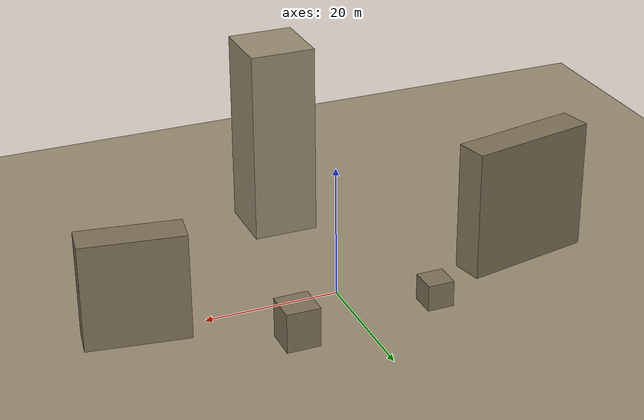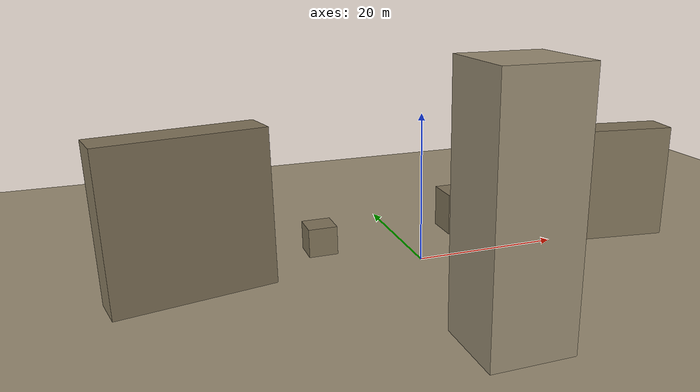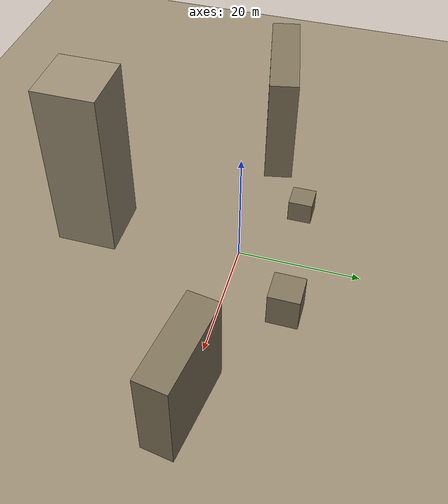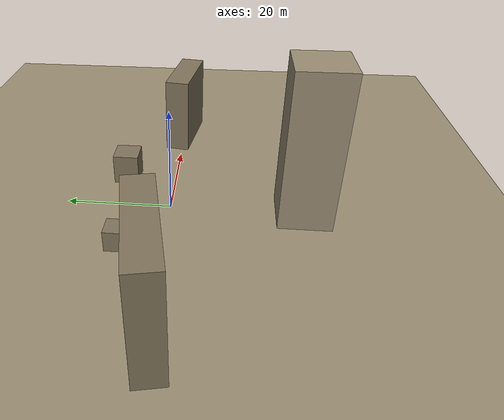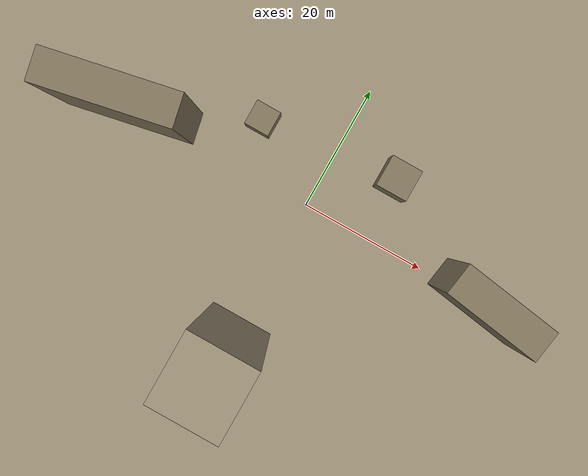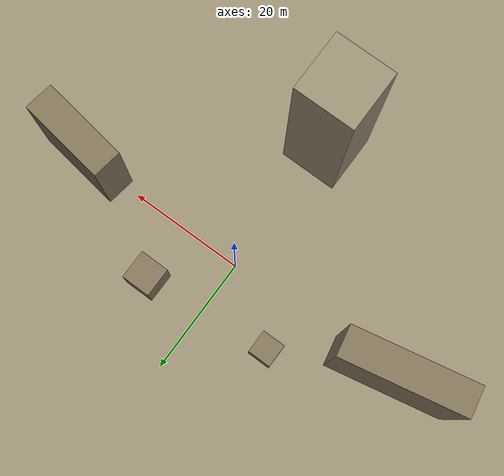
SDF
<?xml version="1.0" ?>
<sdf version="1.7">
  <world name="andino_high_altitude">
    <physics name="default" type="ode">
      <gravity>0 0 -9.81</gravity>
      <real_time_update_rate>250</real_time_update_rate>
      <max_step_size>0.004</max_step_size>
    </physics>

    <scene>
      <ambient>0.65 0.6 0.7 1</ambient>
      <background>0.5 0.6 0.75 1</background>
      <shadows>true</shadows>
      <fog>
        <type>linear</type>
        <start>30</start>
        <end>80</end>
        <color>0.7 0.7 0.8 1</color>
      </fog>
    </scene>

    <light name="sun" type="directional">
      <cast_shadows>true</cast_shadows>
      <pose>0 0 100 0 0 0</pose>
      <diffuse>0.95 0.95 0.9 1</diffuse>
      <specular>0.3 0.3 0.3 1</specular>
      <direction>-0.3 -0.1 -1</direction>
    </light>

    <!-- High altitude terrain — large flat plateau -->
    <model name="ground_plane">
      <static>true</static>
      <link name="link">
        <collision name="collision">
          <geometry><plane><normal>0 0 1</normal><size>200 200</size></plane></geometry>
          <surface>
            <friction>
              <ode><mu>0.6</mu><mu2>0.5</mu2></ode>
            </friction>
          </surface>
        </collision>
        <visual name="visual">
          <geometry><plane><normal>0 0 1</normal><size>200 200</size></plane></geometry>
          <material><ambient>0.5 0.45 0.35 1</ambient><diffuse>0.6 0.55 0.45 1</diffuse></material>
        </visual>
      </link>
    </model>

    <!-- Mountain ridge (west side) -->
    <model name="ridge_west">
      <static>true</static>
      <pose>-30 0 10 0 0 0.2</pose>
      <link name="ridge">
        <collision name="collision">
          <geometry><box><size>20 5 20</size></box></geometry>
        </collision>
        <visual name="visual">
          <geometry><box><size>20 5 20</size></box></geometry>
          <material><ambient>0.4 0.35 0.25 1</ambient><diffuse>0.5 0.45 0.35 1</diffuse></material>
        </visual>
      </link>
    </model>

    <!-- Mountain ridge (east side) -->
    <model name="ridge_east">
      <static>true</static>
      <pose>30 0 8 0 0 -0.15</pose>
      <link name="ridge">
        <collision name="collision">
          <geometry><box><size>15 5 16</size></box></geometry>
        </collision>
        <visual name="visual">
          <geometry><box><size>15 5 16</size></box></geometry>
          <material><ambient>0.4 0.35 0.25 1</ambient><diffuse>0.5 0.45 0.35 1</diffuse></material>
        </visual>
      </link>
    </model>

    <!-- Mountain peak (north) -->
    <model name="peak_north">
      <static>true</static>
      <pose>0 -25 15 0 0 0</pose>
      <link name="peak">
        <collision name="collision">
          <geometry><box><size>10 10 30</size></box></geometry>
        </collision>
        <visual name="visual">
          <geometry><box><size>10 10 30</size></box></geometry>
          <material><ambient>0.55 0.5 0.4 1</ambient><diffuse>0.6 0.55 0.45 1</diffuse></material>
        </visual>
      </link>
    </model>

    <!-- Snow cap on peak -->
    <model name="snow_cap">
      <static>true</static>
      <pose>0 -25 28 0 0 0</pose>
      <link name="snow">
        <visual name="visual">
          <geometry><box><size>6 6 2</size></box></geometry>
          <material><ambient>0.9 0.92 0.95 1</ambient><diffuse>0.95 0.97 1.0 1</diffuse><specular>0.3 0.3 0.3 1</specular></material>
        </visual>
      </link>
    </model>

    <!-- Small hills for terrain variation -->
    <model name="hill_a">
      <static>true</static>
      <pose>10 10 3 0 0 0</pose>
      <link name="hill">
        <collision name="collision">
          <geometry><box><size>5 5 6</size></box></geometry>
        </collision>
        <visual name="visual">
          <geometry><box><size>5 5 6</size></box></geometry>
          <material><ambient>0.45 0.4 0.3 1</ambient><diffuse>0.5 0.45 0.35 1</diffuse></material>
        </visual>
      </link>
    </model>
    <model name="hill_b">
      <static>true</static>
      <pose>-12 8 2 0 0 0</pose>
      <link name="hill">
        <collision name="collision">
          <geometry><box><size>4 4 4</size></box></geometry>
        </collision>
        <visual name="visual">
          <geometry><box><size>4 4 4</size></box></geometry>
          <material><ambient>0.45 0.4 0.3 1</ambient><diffuse>0.5 0.45 0.35 1</diffuse></material>
        </visual>
      </link>
    </model>

    <!-- High altitude wind (strong, gusty) -->
    <wind>
      <linear_velocity>5 3 0</linear_velocity>
    </wind>
  </world>
</sdf>
